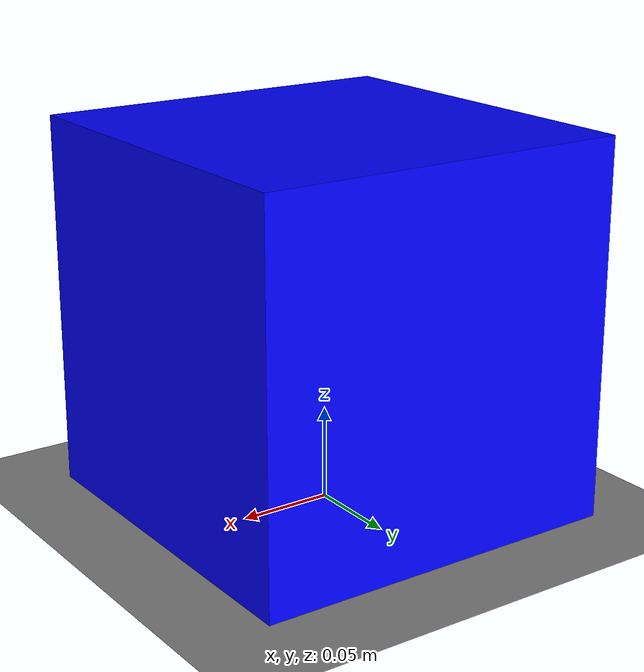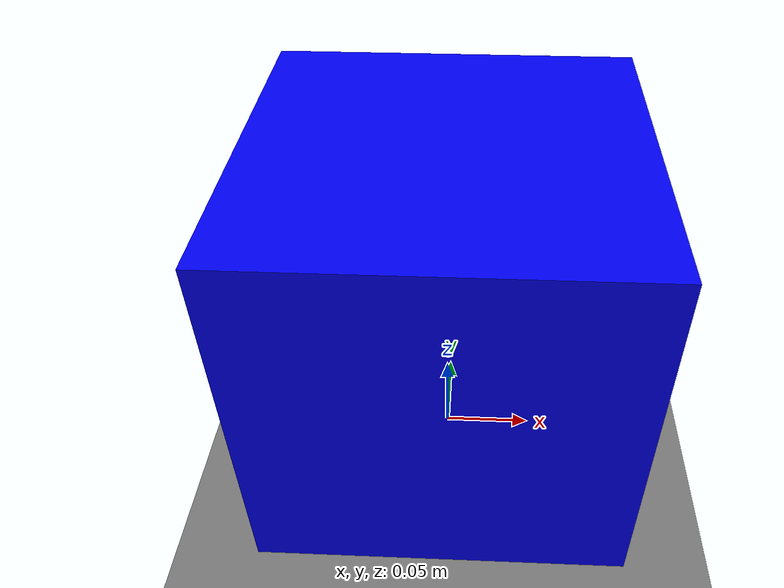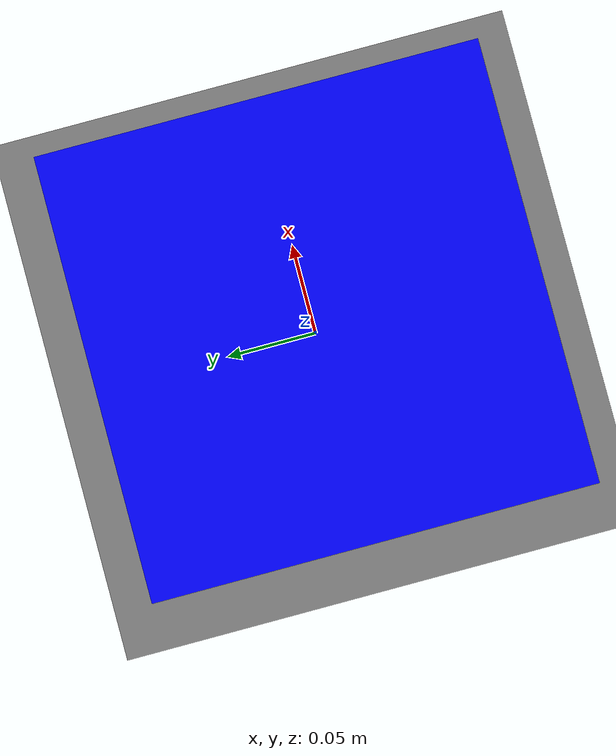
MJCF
<mujoco>
    <worldbody>
        <body name="agent" pos="0 0 0.1">
            <joint name="slide_x" type="slide" axis="1 0 0"/>
            <joint name="slide_y" type="slide" axis="0 1 0"/>

            <geom type="box" rgba="0 0 1 1" size="0.1 0.1 0.1"/>
        </body>

        <body name="target" pos="0 0 0.01">
            <geom type="cylinder" size="0.1 0.01" rgba="1 0 0 1" contype="0" conaffinity="0"/>
        </body>

        <body name="start" pos="0 0 0.01">
            <geom type="cylinder" size="0.1 0.01" rgba="0 1 0 1" contype="0" conaffinity="0"/>
        </body>

        <geom type="plane" size="6 6 0.1"/>
    </worldbody>

    <actuator>
        <motor name="motor_x" joint="slide_x" ctrlrange="-1 1"/>
        <motor name="motor_y" joint="slide_y" ctrlrange="-1 1"/>
    </actuator>
</mujoco>
